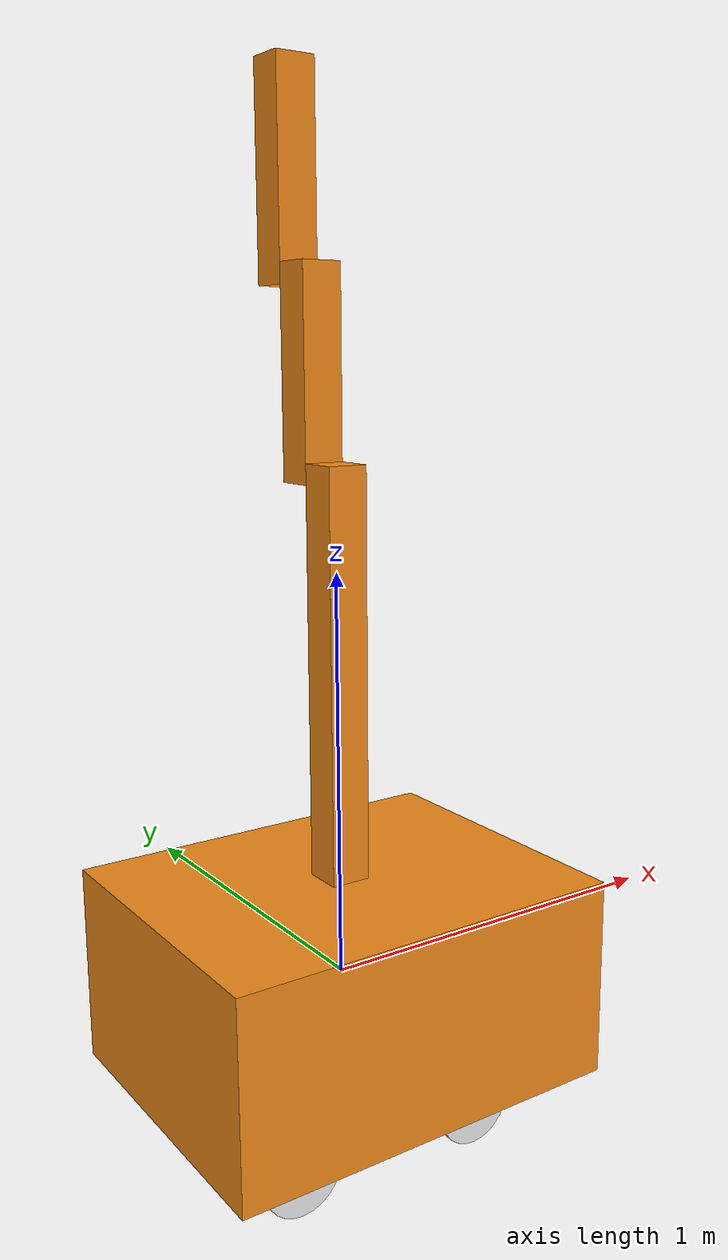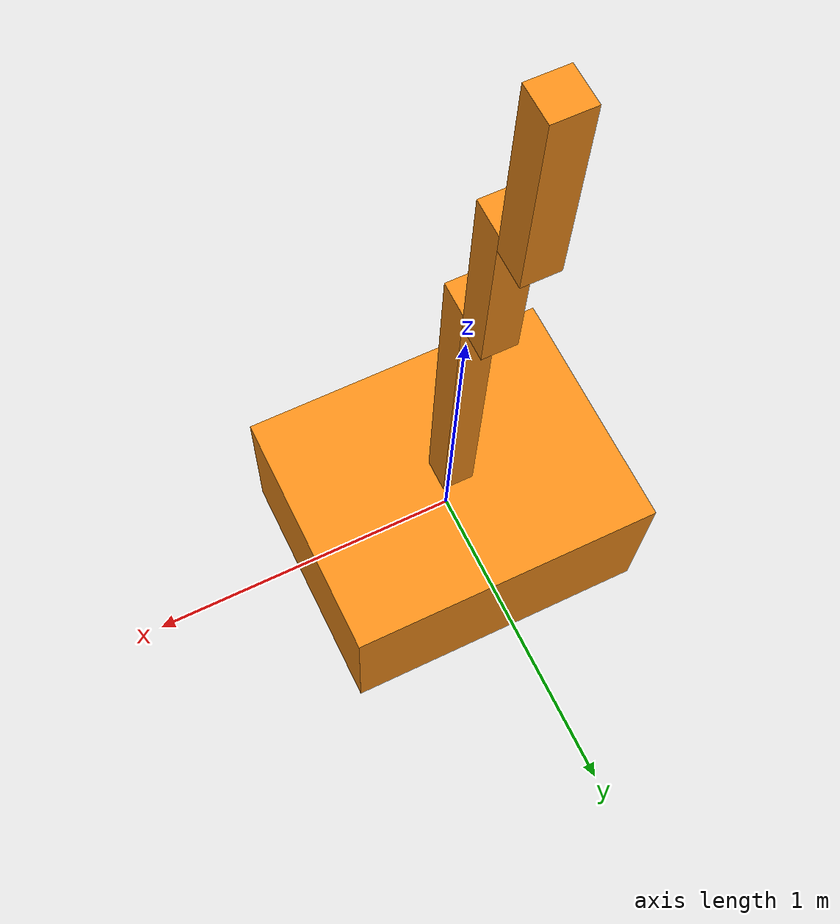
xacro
<?xml version="1.0"?>

<robot name="nsc_robot" xmlns:xacro="http://www.ros.org/wiki/xacro">

 <xacro:include
    filename="$(find nsc_robot_description)/urdf/nsc_robot_arm.xacro" />

<xacro:include filename="$(find nsc_robot_description)/urdf/nsc_robot.gazebo" />

 <!-- Constants for robot dimensions -->
  <xacro:property name="PI" value="3.1415926535897931"/>
  <xacro:property name="mass" value="1" /> <!-- arbitrary value for mass -->
  <xacro:property name="width" value="0.8" />
  <xacro:property name="depth" value="1.0" />
  <xacro:property name="radius_wheel" value="0.1" />
  <xacro:property name="radius_small_wheel" value="0.05" />
  <xacro:property name="length_wheel" value="0.05" />
  <xacro:property name="height1" value="0.5" /> <!-- Link 1 -->
  <xacro:property name="height2" value="0.1" /> <!-- Link 2 -->
  <xacro:property name="height3" value="1" /> <!-- Link 3 -->
  <xacro:property name="camera_link" value="0.05" />
  <xacro:property name="axel_offset" value="0.05" />

<xacro:macro name="default_inertial" params="mass">
    <inertial>
            <mass value="${mass}" />
            <inertia ixx="1.0" ixy="0.0" ixz="0.0"
                 iyy="1.0" iyz="0.0"
                 izz="1.0" />
    </inertial>
</xacro:macro>

<xacro:macro name="wheel" params="parent_link name_link radius_wheel x y z rot_x rot_y rot_z">
    <link name="${name_link}_leg">
        <visual>
            <geometry>
                <cylinder radius="${radius_wheel}" length="${length_wheel}"/>
            </geometry>
            <origin xyz="0 0 0" rpy="${PI/2} 0 0"/>
            <material name="white"/>
        </visual>
        <collision>
            <geometry>
                <cylinder radius="${radius_wheel}" length="${length_wheel}"/>
            </geometry>
            <origin xyz="0 0 0" rpy="${PI/2} 0 0"/>
        </collision>
        <xacro:default_inertial mass="1"/>
    </link>

    <joint name="base_to_${name_link}" type="continuous">
        <parent link="${parent_link}"/>
        <child link="${name_link}_leg"/>
        <origin xyz="${x} ${y} ${z}" />
        <axis xyz="${rot_x} ${rot_y} ${rot_z}"/>
    </joint>
    <!-- A bunch of stuff cut -->
</xacro:macro>

<xacro:wheel parent_link="base_link" name_link="wheel_front_left" radius_wheel="${radius_wheel}" x="${depth/4}" y="${width/4}" z="${-height1/2 - radius_wheel}" rot_x="0" rot_y="1" rot_z="0" />
<xacro:wheel parent_link="base_link" name_link="wheel_front_right" radius_wheel="${radius_wheel}" x="${depth/4}" y="${-width/4}" z="${-height1/2 - radius_wheel}" rot_x="0" rot_y="1" rot_z="0" />

  <!-- Base Link -->
  <link name="base_link">
    <visual>
      <origin xyz="0 0 0" rpy="0 0 0"/>
      <geometry>
        <box size="${depth} ${width} ${height1}"/>
      </geometry>
      <material name="orange"/>
    </visual>

    <collision>
      <origin xyz="0 0 0" rpy="0 0 0"/>
      <geometry>
        <box size="${depth} ${width} ${height1}"/>
      </geometry>
    </collision>

    <inertial>
      <origin xyz="0 0 0" rpy="0 0 0"/>
      <mass value="${mass}"/>
      <inertia
          ixx="${mass / 12.0 * (width*width + height1*height1)}" ixy="0.0" ixz="0.0"
          iyy="${mass / 12.0 * (height1*height1 + width*width)}" iyz="0.0"
          izz="${mass / 12.0 * (width*width + width*width)}"/>
    </inertial>
  </link>

  <!-- wheel_back_right vertical joint-->
  <joint name="joint1_wheel_back_right" type="continuous">
    <parent link="base_link"/>
    <child link="wheel_back_right_bar"/>
    <origin xyz="${-depth/4} ${-width/4} ${-height1/2}" rpy="0 0 0"/>
    <axis xyz="0 0 1"/>
    <dynamics damping="0.7"/>
  </joint>

  <link name="wheel_back_right_bar">
    <visual>
      <origin xyz="0 0 ${-height2/2}" rpy="0 0 0"/>
      <geometry>
        <box size="0.01 0.01 ${height2}"/>
      </geometry>
      <material name="black"/>
    </visual>

    <collision>
      <origin xyz="0 0 ${-height2/2}" rpy="0 0 0"/>
      <geometry>
        <box size="0.01 0.01 ${height2}"/>
      </geometry>
    </collision>

    <inertial>
      <origin xyz="0 0 ${-height2/2}" rpy="0 0 0"/>
      <mass value="${mass}"/>
      <inertia
          ixx="${mass / 12.0 * (width*width + height2*height2)}" ixy="0.0" ixz="0.0"
          iyy="${mass / 12.0 * (height2*height2 + width*width)}" iyz="0.0"
          izz="${mass / 12.0 * (width*width + width*width)}"/>
    </inertial>
  </link>

<xacro:wheel parent_link="wheel_back_right_bar" name_link="wheel_back_right" radius_wheel="${radius_wheel}" x="0" y="0" z="${-height2}" rot_x="0" rot_y="1" rot_z="0" />

  <!-- wheel_back_left vertical joint-->
  <joint name="joint1_wheel_back_left" type="continuous">
    <parent link="base_link"/>
    <child link="wheel_back_left_bar"/>
    <origin xyz="${-depth/4} ${width/4} ${-height1/2}" rpy="0 0 0"/>
    <axis xyz="0 0 1"/>
    <dynamics damping="0.7"/>
  </joint>

  <link name="wheel_back_left_bar">
    <visual>
      <origin xyz="0 0 ${-height2/2}" rpy="0 0 0"/>
      <geometry>
        <box size="0.01 0.01 ${height2}"/>
      </geometry>
      <material name="black"/>
    </visual>

    <collision>
      <origin xyz="0 0 ${-height2/2}" rpy="0 0 0"/>
      <geometry>
        <box size="0.01 0.01 ${height2}"/>
      </geometry>
    </collision>

    <inertial>
      <origin xyz="0 0 ${-height2/2}" rpy="0 0 0"/>
      <mass value="${mass}"/>
      <inertia
          ixx="${mass / 12.0 * (width*width + height2*height2)}" ixy="0.0" ixz="0.0"
          iyy="${mass / 12.0 * (height2*height2 + width*width)}" iyz="0.0"
          izz="${mass / 12.0 * (width*width + width*width)}"/>
    </inertial>
  </link>

<xacro:wheel parent_link="wheel_back_left_bar" name_link="wheel_back_left" radius_wheel="${radius_wheel}" x="0" y="0" z="${-height2}" rot_x="0" rot_y="1" rot_z="0" />

  <transmission name="tran1">
    <type>transmission_interface/SimpleTransmission</type>
    <joint name="joint_arm1">
      <hardwareInterface>EffortJointInterface</hardwareInterface>
    </joint>
    <actuator name="motor1">
      <hardwareInterface>EffortJointInterface</hardwareInterface>
      <mechanicalReduction>1</mechanicalReduction>
    </actuator>
  </transmission>

  <transmission name="tran2">
    <type>transmission_interface/SimpleTransmission</type>
    <joint name="joint_arm2">
      <hardwareInterface>EffortJointInterface</hardwareInterface>
    </joint>
    <actuator name="motor2">
      <hardwareInterface>EffortJointInterface</hardwareInterface>
      <mechanicalReduction>1</mechanicalReduction>
    </actuator>
  </transmission>

  <transmission name="tran3">
    <type>transmission_interface/SimpleTransmission</type>
    <joint name="joint_arm3">
      <hardwareInterface>EffortJointInterface</hardwareInterface>
    </joint>
    <actuator name="motor3">
      <hardwareInterface>EffortJointInterface</hardwareInterface>
      <mechanicalReduction>1</mechanicalReduction>
    </actuator>
  </transmission>

</robot>

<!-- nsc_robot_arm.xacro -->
<robot
  xmlns:xacro="http://www.ros.org/wiki/xacro"
  name="nsc_robot_arm">
    <!-- Constants for robot dimensions -->
  <xacro:property name="PI" value="3.1415926535897931"/>
  <xacro:property name="mass2" value="1" /> <!-- arbitrary value for mass -->
  <xacro:property name="width2" value="0.1" /> <!-- Square dimensions (widthxwidth) of beams -->
  <xacro:property name="height4" value="1" /> <!-- Link 1 -->
  <xacro:property name="height5" value="0.5" /> <!-- Link 2 -->
  <xacro:property name="height6" value="0.5" /> <!-- Link 3 -->
  <xacro:property name="camera_link" value="0.05" /> <!-- Size of square 'camera' box -->
  <xacro:property name="axel_offset" value="0.05" /> <!-- Space btw top of beam and the each joint -->

<xacro:macro name="arm" params="parent_link name_link height width x y z rot_x rot_y rot_z">
    <link name="${name_link}">

        <collision>
          <origin xyz="0 0 ${height/2}" rpy="0 0 0"/>
          <geometry>
        <box size="${width} ${width} ${height}"/>
          </geometry>
        </collision>

        <visual>
          <origin xyz="0 0 ${height/2}" rpy="0 0 0"/>
          <geometry>
        <box size="${width} ${width} ${height}"/>
          </geometry>
          <material name="orange"/>
        </visual>

        <inertial>
          <origin xyz="0 0 ${height/2}" rpy="0 0 0"/>
          <mass value="${mass2}"/>
          <inertia
          ixx="${mass2 / 12.0 * (width*width + height*height)}" ixy="0.0" ixz="0.0"
          iyy="${mass2 / 12.0 * (height*height + width*width)}" iyz="0.0"
          izz="${mass2 / 12.0 * (width*width + width*width)}"/>
        </inertial>
      </link>

    <joint name="joint_${name_link}" type="continuous">
    <parent link="${parent_link}"/>
    <child link="${name_link}"/>
    <origin xyz="${x} ${y} ${z}" rpy="0 0 0"/>
    <axis xyz="${rot_x} ${rot_y} ${rot_z}"/>
    <dynamics damping="0.7"/>
  </joint>
</xacro:macro>

<xacro:arm parent_link="base_link" name_link="arm1" height="${height4}" width="${width2}" x="0" y="0" z="0.25" rot_x="0" rot_y="0" rot_z="1"/>
<xacro:arm parent_link="arm1" name_link="arm2" height="${height5}" width="${width2}" x="0" y="${width2}" z="${height4 - width2/2}" rot_x="0" rot_y="1" rot_z="0"/>
<xacro:arm parent_link="arm2" name_link="arm3" height="${height6}" width="${width2}" x="0" y="${width2}" z="${height5 - width2/2}" rot_x="0" rot_y="1" rot_z="0"/>
</robot>
